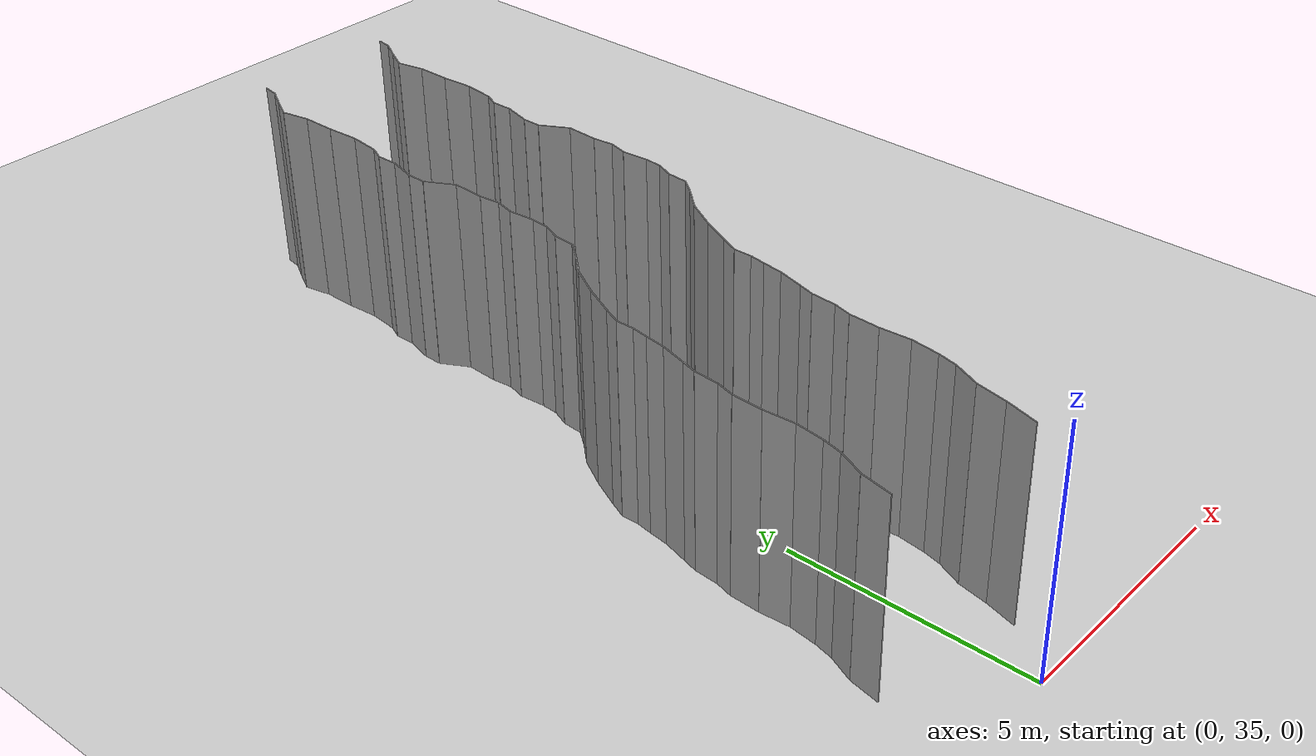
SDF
<sdf version="1.6">
 <world name="default">
  <model name="ground_plane">
   <static>1</static>
   <link name="link">
    <collision name="collision">
     <geometry><plane><normal>0 0 1</normal><size>200 200</size></plane></geometry>
     <surface><friction><ode><mu>100</mu><mu2>50</mu2></ode></friction></surface>
    </collision>
    <visual name="visual">
     <cast_shadows>0</cast_shadows>
     <geometry><plane><normal>0 0 1</normal><size>200 200</size></plane></geometry>
     <material>
      <script><uri>file://media/materials/scripts/gazebo.material</uri><name>Gazebo/Grey</name></script>
     </material>
    </visual>
   </link>
   <pose>0 100 0 0 -0 0</pose>
  </model>
  <model name="wall_149">
   <static>1</static>
   <pose>0.953952443075921 36.362715006935 2 0 0 -0.2597787357633668</pose>
   <link name="link">
    <collision name="collision"><geometry><box><size>0.02 0.666760400928 4</size></box></geometry></collision>
    <visual name="visual">
     <material>
      <script><name>Gazebo/Grey</name><uri>file://media/materials/scripts/gazebo.material</uri></script>
     </material>
     <geometry><box><size>0.02 0.666760400928 4</size></box></geometry>
    </visual>
   </link>
  </model>
  <model name="wall_150">
   <static>1</static>
   <pose>-1.9035389073578008 36.99533701564608 2 0 0 -0.1812032546005489</pose>
   <link name="link">
    <collision name="collision"><geometry><box><size>0.02 0.631189649883 4</size></box></geometry></collision>
    <visual name="visual">
     <material>
      <script><name>Gazebo/Grey</name><uri>file://media/materials/scripts/gazebo.material</uri></script>
     </material>
     <geometry><box><size>0.02 0.631189649883 4</size></box></geometry>
    </visual>
   </link>
  </model>
  <model name="wall_151">
   <static>1</static>
   <pose>1.0964610926421992 36.99533701564608 2 0 0 -0.1812032546005489</pose>
   <link name="link">
    <collision name="collision"><geometry><box><size>0.02 0.631189649883 4</size></box></geometry></collision>
    <visual name="visual">
     <material>
      <script><name>Gazebo/Grey</name><uri>file://media/materials/scripts/gazebo.material</uri></script>
     </material>
     <geometry><box><size>0.02 0.631189649883 4</size></box></geometry>
    </visual>
   </link>
  </model>
  <model name="wall_152">
   <static>1</static>
   <pose>-1.7366129652420343 37.56650441227208 2 0 0 -0.3993901879581281</pose>
   <link name="link">
    <collision name="collision"><geometry><box><size>0.02 0.566026507885 4</size></box></geometry></collision>
    <visual name="visual">
     <material>
      <script><name>Gazebo/Grey</name><uri>file://media/materials/scripts/gazebo.material</uri></script>
     </material>
     <geometry><box><size>0.02 0.566026507885 4</size></box></geometry>
    </visual>
   </link>
  </model>
  <model name="wall_153">
   <static>1</static>
   <pose>1.2633870347579657 37.56650441227208 2 0 0 -0.3993901879581281</pose>
   <link name="link">
    <collision name="collision"><geometry><box><size>0.02 0.566026507885 4</size></box></geometry></collision>
    <visual name="visual">
     <material>
      <script><name>Gazebo/Grey</name><uri>file://media/materials/scripts/gazebo.material</uri></script>
     </material>
     <geometry><box><size>0.02 0.566026507885 4</size></box></geometry>
    </visual>
   </link>
  </model>
  <model name="wall_154">
   <static>1</static>
   <pose>-1.5833919216370573 38.02011456175424 2 0 0 -0.22019690850077497</pose>
   <link name="link">
    <collision name="collision"><geometry><box><size>0.02 0.395285422808 4</size></box></geometry></collision>
    <visual name="visual">
     <material>
      <script><name>Gazebo/Grey</name><uri>file://media/materials/scripts/gazebo.material</uri></script>
     </material>
     <geometry><box><size>0.02 0.395285422808 4</size></box></geometry>
    </visual>
   </link>
  </model>
  <model name="wall_155">
   <static>1</static>
   <pose>1.4166080783629427 38.02011456175424 2 0 0 -0.22019690850077497</pose>
   <link name="link">
    <collision name="collision"><geometry><box><size>0.02 0.395285422808 4</size></box></geometry></collision>
    <visual name="visual">
     <material>
      <script><name>Gazebo/Grey</name><uri>file://media/materials/scripts/gazebo.material</uri></script>
     </material>
     <geometry><box><size>0.02 0.395285422808 4</size></box></geometry>
    </visual>
   </link>
  </model>
  <model name="wall_156">
   <static>1</static>
   <pose>-1.5086262407785367 38.494411604739255 2 0 0 -0.11180341787619473</pose>
   <link name="link">
    <collision name="collision"><geometry><box><size>0.02 0.566389291869 4</size></box></geometry></collision>
    <visual name="visual">
     <material>
      <script><name>Gazebo/Grey</name><uri>file://media/materials/scripts/gazebo.material</uri></script>
     </material>
     <geometry><box><size>0.02 0.566389291869 4</size></box></geometry>
    </visual>
   </link>
  </model>
  <model name="wall_157">
   <static>1</static>
   <pose>1.4913737592214633 38.494411604739255 2 0 0 -0.11180341787619473</pose>
   <link name="link">
    <collision name="collision"><geometry><box><size>0.02 0.566389291869 4</size></box></geometry></collision>
    <visual name="visual">
     <material>
      <script><name>Gazebo/Grey</name><uri>file://media/materials/scripts/gazebo.material</uri></script>
     </material>
     <geometry><box><size>0.02 0.566389291869 4</size></box></geometry>
    </visual>
   </link>
  </model>
  <model name="wall_158">
   <static>1</static>
   <pose>-1.4994235830581988 39.08021783349541 2 0 0 0.0734387904184547</pose>
   <link name="link">
    <collision name="collision"><geometry><box><size>0.02 0.610404708776 4</size></box></geometry></collision>
    <visual name="visual">
     <material>
      <script><name>Gazebo/Grey</name><uri>file://media/materials/scripts/gazebo.material</uri></script>
     </material>
     <geometry><box><size>0.02 0.610404708776 4</size></box></geometry>
    </visual>
   </link>
  </model>
  <model name="wall_159">
   <static>1</static>
   <pose>1.5005764169418012 39.08021783349541 2 0 0 0.0734387904184547</pose>
   <link name="link">
    <collision name="collision"><geometry><box><size>0.02 0.610404708776 4</size></box></geometry></collision>
    <visual name="visual">
     <material>
      <script><name>Gazebo/Grey</name><uri>file://media/materials/scripts/gazebo.material</uri></script>
     </material>
     <geometry><box><size>0.02 0.610404708776 4</size></box></geometry>
    </visual>
   </link>
  </model>
  <model name="wall_160">
   <static>1</static>
   <pose>-1.5132501568828698 39.689447100309806 2 0 0 -0.028094913647897617</pose>
   <link name="link">
    <collision name="collision"><geometry><box><size>0.02 0.609939823895 4</size></box></geometry></collision>
    <visual name="visual">
     <material>
      <script><name>Gazebo/Grey</name><uri>file://media/materials/scripts/gazebo.material</uri></script>
     </material>
     <geometry><box><size>0.02 0.609939823895 4</size></box></geometry>
    </visual>
   </link>
  </model>
  <model name="wall_161">
   <static>1</static>
   <pose>1.4867498431171302 39.689447100309806 2 0 0 -0.028094913647897617</pose>
   <link name="link">
    <collision name="collision"><geometry><box><size>0.02 0.609939823895 4</size></box></geometry></collision>
    <visual name="visual">
     <material>
      <script><name>Gazebo/Grey</name><uri>file://media/materials/scripts/gazebo.material</uri></script>
     </material>
     <geometry><box><size>0.02 0.609939823895 4</size></box></geometry>
    </visual>
   </link>
  </model>
  <model name="wall_162">
   <static>1</static>
   <pose>-1.461634593825266 40.17146752674185 2 0 0 -0.2383586892294332</pose>
   <link name="link">
    <collision name="collision"><geometry><box><size>0.02 0.364651597069 4</size></box></geometry></collision>
    <visual name="visual">
     <material>
      <script><name>Gazebo/Grey</name><uri>file://media/materials/scripts/gazebo.material</uri></script>
     </material>
     <geometry><box><size>0.02 0.364651597069 4</size></box></geometry>
    </visual>
   </link>
  </model>
  <model name="wall_163">
   <static>1</static>
   <pose>1.538365406174734 40.17146752674185 2 0 0 -0.2383586892294332</pose>
   <link name="link">
    <collision name="collision"><geometry><box><size>0.02 0.364651597069 4</size></box></geometry></collision>
    <visual name="visual">
     <material>
      <script><name>Gazebo/Grey</name><uri>file://media/materials/scripts/gazebo.material</uri></script>
     </material>
     <geometry><box><size>0.02 0.364651597069 4</size></box></geometry>
    </visual>
   </link>
  </model>
  <model name="wall_164">
   <static>1</static>
   <pose>-1.4059059711384316 40.59697665930927 2 0 0 -0.05101523009998536</pose>
   <link name="link">
    <collision name="collision"><geometry><box><size>0.02 0.497323547153 4</size></box></geometry></collision>
    <visual name="visual">
     <material>
      <script><name>Gazebo/Grey</name><uri>file://media/materials/scripts/gazebo.material</uri></script>
     </material>
     <geometry><box><size>0.02 0.497323547153 4</size></box></geometry>
    </visual>
   </link>
  </model>
  <model name="wall_165">
   <static>1</static>
   <pose>1.5940940288615684 40.59697665930927 2 0 0 -0.05101523009998536</pose>
   <link name="link">
    <collision name="collision"><geometry><box><size>0.02 0.497323547153 4</size></box></geometry></collision>
    <visual name="visual">
     <material>
      <script><name>Gazebo/Grey</name><uri>file://media/materials/scripts/gazebo.material</uri></script>
     </material>
     <geometry><box><size>0.02 0.497323547153 4</size></box></geometry>
    </visual>
   </link>
  </model>
  <model name="wall_166">
   <static>1</static>
   <pose>-1.353817860589439 40.99644152057332 2 0 0 -0.2550816854668799</pose>
   <link name="link">
    <collision name="collision"><geometry><box><size>0.02 0.312360331455 4</size></box></geometry></collision>
    <visual name="visual">
     <material>
      <script><name>Gazebo/Grey</name><uri>file://media/materials/scripts/gazebo.material</uri></script>
     </material>
     <geometry><box><size>0.02 0.312360331455 4</size></box></geometry>
    </visual>
   </link>
  </model>
  <model name="wall_167">
   <static>1</static>
   <pose>1.646182139410561 40.99644152057332 2 0 0 -0.2550816854668799</pose>
   <link name="link">
    <collision name="collision"><geometry><box><size>0.02 0.312360331455 4</size></box></geometry></collision>
    <visual name="visual">
     <material>
      <script><name>Gazebo/Grey</name><uri>file://media/materials/scripts/gazebo.material</uri></script>
     </material>
     <geometry><box><size>0.02 0.312360331455 4</size></box></geometry>
    </visual>
   </link>
  </model>
  <model name="wall_168">
   <static>1</static>
   <pose>-1.248561377916815 41.408144441778674 2 0 0 -0.24752099990059293</pose>
   <link name="link">
    <collision name="collision"><geometry><box><size>0.02 0.537535243276 4</size></box></geometry></collision>
    <visual name="visual">
     <material>
      <script><name>Gazebo/Grey</name><uri>file://media/materials/scripts/gazebo.material</uri></script>
     </material>
     <geometry><box><size>0.02 0.537535243276 4</size></box></geometry>
    </visual>
   </link>
  </model>
  <model name="wall_169">
   <static>1</static>
   <pose>1.751438622083185 41.408144441778674 2 0 0 -0.24752099990059293</pose>
   <link name="link">
    <collision name="collision"><geometry><box><size>0.02 0.537535243276 4</size></box></geometry></collision>
    <visual name="visual">
     <material>
      <script><name>Gazebo/Grey</name><uri>file://media/materials/scripts/gazebo.material</uri></script>
     </material>
     <geometry><box><size>0.02 0.537535243276 4</size></box></geometry>
    </visual>
   </link>
  </model>
  <model name="wall_170">
   <static>1</static>
   <pose>-1.1589398444164498 41.871208563569006 2 0 0 -0.11687020695933784</pose>
   <link name="link">
    <collision name="collision"><geometry><box><size>0.02 0.407757128646 4</size></box></geometry></collision>
    <visual name="visual">
     <material>
      <script><name>Gazebo/Grey</name><uri>file://media/materials/scripts/gazebo.material</uri></script>
     </material>
     <geometry><box><size>0.02 0.407757128646 4</size></box></geometry>
    </visual>
   </link>
  </model>
  <model name="wall_171">
   <static>1</static>
   <pose>1.8410601555835502 41.871208563569006 2 0 0 -0.11687020695933784</pose>
   <link name="link">
    <collision name="collision"><geometry><box><size>0.02 0.407757128646 4</size></box></geometry></collision>
    <visual name="visual">
     <material>
      <script><name>Gazebo/Grey</name><uri>file://media/materials/scripts/gazebo.material</uri></script>
     </material>
     <geometry><box><size>0.02 0.407757128646 4</size></box></geometry>
    </visual>
   </link>
  </model>
  <model name="wall_172">
   <static>1</static>
   <pose>-1.1125136997612342 42.235458995203956 2 0 0 -0.13913383616414896</pose>
   <link name="link">
    <collision name="collision"><geometry><box><size>0.02 0.326682167201 4</size></box></geometry></collision>
    <visual name="visual">
     <material>
      <script><name>Gazebo/Grey</name><uri>file://media/materials/scripts/gazebo.material</uri></script>
     </material>
     <geometry><box><size>0.02 0.326682167201 4</size></box></geometry>
    </visual>
   </link>
  </model>
  <model name="wall_173">
   <static>1</static>
   <pose>1.8874863002387658 42.235458995203956 2 0 0 -0.13913383616414896</pose>
   <link name="link">
    <collision name="collision"><geometry><box><size>0.02 0.326682167201 4</size></box></geometry></collision>
    <visual name="visual">
     <material>
      <script><name>Gazebo/Grey</name><uri>file://media/materials/scripts/gazebo.material</uri></script>
     </material>
     <geometry><box><size>0.02 0.326682167201 4</size></box></geometry>
    </visual>
   </link>
  </model>
  <model name="wall_174">
   <static>1</static>
   <pose>-1.094319239344467 42.57827748512492 2 0 0 0.0246203461515171</pose>
   <link name="link">
    <collision name="collision"><geometry><box><size>0.02 0.362221485198 4</size></box></geometry></collision>
    <visual name="visual">
     <material>
      <script><name>Gazebo/Grey</name><uri>file://media/materials/scripts/gazebo.material</uri></script>
     </material>
     <geometry><box><size>0.02 0.362221485198 4</size></box></geometry>
    </visual>
   </link>
  </model>
  <model name="wall_175">
   <static>1</static>
   <pose>1.905680760655533 42.57827748512492 2 0 0 0.0246203461515171</pose>
   <link name="link">
    <collision name="collision"><geometry><box><size>0.02 0.362221485198 4</size></box></geometry></collision>
    <visual name="visual">
     <material>
      <script><name>Gazebo/Grey</name><uri>file://media/materials/scripts/gazebo.material</uri></script>
     </material>
     <geometry><box><size>0.02 0.362221485198 4</size></box></geometry>
    </visual>
   </link>
  </model>
  <model name="wall_176">
   <static>1</static>
   <pose>-1.0290549616210347 42.93020750800942 2 0 0 -0.38741483097946844</pose>
   <link name="link">
    <collision name="collision"><geometry><box><size>0.02 0.369102996166 4</size></box></geometry></collision>
    <visual name="visual">
     <material>
      <script><name>Gazebo/Grey</name><uri>file://media/materials/scripts/gazebo.material</uri></script>
     </material>
     <geometry><box><size>0.02 0.369102996166 4</size></box></geometry>
    </visual>
   </link>
  </model>
  <model name="wall_177">
   <static>1</static>
   <pose>1.9709450383789653 42.93020750800942 2 0 0 -0.38741483097946844</pose>
   <link name="link">
    <collision name="collision"><geometry><box><size>0.02 0.369102996166 4</size></box></geometry></collision>
    <visual name="visual">
     <material>
      <script><name>Gazebo/Grey</name><uri>file://media/materials/scripts/gazebo.material</uri></script>
     </material>
     <geometry><box><size>0.02 0.369102996166 4</size></box></geometry>
    </visual>
   </link>
  </model>
  <model name="wall_178">
   <static>1</static>
   <pose>-0.8257526102507109 43.401699759171 2 0 0 -0.41814509967411434</pose>
   <link name="link">
    <collision name="collision"><geometry><box><size>0.02 0.65792011163 4</size></box></geometry></collision>
    <visual name="visual">
     <material>
      <script><name>Gazebo/Grey</name><uri>file://media/materials/scripts/gazebo.material</uri></script>
     </material>
     <geometry><box><size>0.02 0.65792011163 4</size></box></geometry>
    </visual>
   </link>
  </model>
  <model name="wall_179">
   <static>1</static>
   <pose>2.174247389749289 43.401699759171 2 0 0 -0.41814509967411434</pose>
   <link name="link">
    <collision name="collision"><geometry><box><size>0.02 0.65792011163 4</size></box></geometry></collision>
    <visual name="visual">
     <material>
      <script><name>Gazebo/Grey</name><uri>file://media/materials/scripts/gazebo.material</uri></script>
     </material>
     <geometry><box><size>0.02 0.65792011163 4</size></box></geometry>
    </visual>
   </link>
  </model>
  <model name="wall_180">
   <static>1</static>
   <pose>-0.5340589634218502 43.99341517085302 2 0 0 -0.49758113539258214</pose>
   <link name="link">
    <collision name="collision"><geometry><box><size>0.02 0.662533723747 4</size></box></geometry></collision>
    <visual name="visual">
     <material>
      <script><name>Gazebo/Grey</name><uri>file://media/materials/scripts/gazebo.material</uri></script>
     </material>
     <geometry><box><size>0.02 0.662533723747 4</size></box></geometry>
    </visual>
   </link>
  </model>
  <model name="wall_181">
   <static>1</static>
   <pose>2.46594103657815 43.99341517085302 2 0 0 -0.49758113539258214</pose>
   <link name="link">
    <collision name="collision"><geometry><box><size>0.02 0.662533723747 4</size></box></geometry></collision>
    <visual name="visual">
     <material>
      <script><name>Gazebo/Grey</name><uri>file://media/materials/scripts/gazebo.material</uri></script>
     </material>
     <geometry><box><size>0.02 0.662533723747 4</size></box></geometry>
    </visual>
   </link>
  </model>
  <model name="wall_182">
   <static>1</static>
   <pose>-0.1981083959927554 44.48720207509857 2 0 0 -0.7201782046623049</pose>
   <link name="link">
    <collision name="collision"><geometry><box><size>0.02 0.539291615489 4</size></box></geometry></collision>
    <visual name="visual">
     <material>
      <script><name>Gazebo/Grey</name><uri>file://media/materials/scripts/gazebo.material</uri></script>
     </material>
     <geometry><box><size>0.02 0.539291615489 4</size></box></geometry>
    </visual>
   </link>
  </model>
  <model name="wall_183">
   <static>1</static>
   <pose>2.8018916040072446 44.48720207509857 2 0 0 -0.7201782046623049</pose>
   <link name="link">
    <collision name="collision"><geometry><box><size>0.02 0.539291615489 4</size></box></geometry></collision>
    <visual name="visual">
     <material>
      <script><name>Gazebo/Grey</name><uri>file://media/materials/scripts/gazebo.material</uri></script>
     </material>
     <geometry><box><size>0.02 0.539291615489 4</size></box></geometry>
    </visual>
   </link>
  </model>
  <model name="wall_184">
   <static>1</static>
   <pose>0.10004104919824205 44.848594451918174 2 0 0 -0.6486666486319423</pose>
   <link name="link">
    <collision name="collision"><geometry><box><size>0.02 0.398305408374 4</size></box></geometry></collision>
    <visual name="visual">
     <material>
      <script><name>Gazebo/Grey</name><uri>file://media/materials/scripts/gazebo.material</uri></script>
     </material>
     <geometry><box><size>0.02 0.398305408374 4</size></box></geometry>
    </visual>
   </link>
  </model>
  <model name="wall_185">
   <static>1</static>
   <pose>3.100041049198242 44.848594451918174 2 0 0 -0.6486666486319423</pose>
   <link name="link">
    <collision name="collision"><geometry><box><size>0.02 0.398305408374 4</size></box></geometry></collision>
    <visual name="visual">
     <material>
      <script><name>Gazebo/Grey</name><uri>file://media/materials/scripts/gazebo.material</uri></script>
     </material>
     <geometry><box><size>0.02 0.398305408374 4</size></box></geometry>
    </visual>
   </link>
  </model>
  <model name="wall_186">
   <static>1</static>
   <pose>0.23278929678846594 45.22057199758341 2 0 0 -0.05824025257293342</pose>
   <link name="link">
    <collision name="collision"><geometry><box><size>0.02 0.427273923946 4</size></box></geometry></collision>
    <visual name="visual">
     <material>
      <script><name>Gazebo/Grey</name><uri>file://media/materials/scripts/gazebo.material</uri></script>
     </material>
     <geometry><box><size>0.02 0.427273923946 4</size></box></geometry>
    </visual>
   </link>
  </model>
  <model name="wall_187">
   <static>1</static>
   <pose>3.232789296788466 45.22057199758341 2 0 0 -0.05824025257293342</pose>
   <link name="link">
    <collision name="collision"><geometry><box><size>0.02 0.427273923946 4</size></box></geometry></collision>
    <visual name="visual">
     <material>
      <script><name>Gazebo/Grey</name><uri>file://media/materials/scripts/gazebo.material</uri></script>
     </material>
     <geometry><box><size>0.02 0.427273923946 4</size></box></geometry>
    </visual>
   </link>
  </model>
  <model name="wall_188">
   <static>1</static>
   <pose>0.31382050513622883 45.609206447766766 2 0 0 -0.372873750901529</pose>
   <link name="link">
    <collision name="collision"><geometry><box><size>0.02 0.376597576998 4</size></box></geometry></collision>
    <visual name="visual">
     <material>
      <script><name>Gazebo/Grey</name><uri>file://media/materials/scripts/gazebo.material</uri></script>
     </material>
     <geometry><box><size>0.02 0.376597576998 4</size></box></geometry>
    </visual>
   </link>
  </model>
  <model name="wall_189">
   <static>1</static>
   <pose>3.3138205051362286 45.609206447766766 2 0 0 -0.372873750901529</pose>
   <link name="link">
    <collision name="collision"><geometry><box><size>0.02 0.376597576998 4</size></box></geometry></collision>
    <visual name="visual">
     <material>
      <script><name>Gazebo/Grey</name><uri>file://media/materials/scripts/gazebo.material</uri></script>
     </material>
     <geometry><box><size>0.02 0.376597576998 4</size></box></geometry>
    </visual>
   </link>
  </model>
  <model name="wall_190">
   <static>1</static>
   <pose>0.3930780464380687 45.95806623233446 2 0 0 -0.0613727764012127</pose>
   <link name="link">
    <collision name="collision"><geometry><box><size>0.02 0.347654692203 4</size></box></geometry></collision>
    <visual name="visual">
     <material>
      <script><name>Gazebo/Grey</name><uri>file://media/materials/scripts/gazebo.material</uri></script>
     </material>
     <geometry><box><size>0.02 0.347654692203 4</size></box></geometry>
    </visual>
   </link>
  </model>
  <model name="wall_191">
   <static>1</static>
   <pose>3.3930780464380685 45.95806623233446 2 0 0 -0.0613727764012127</pose>
   <link name="link">
    <collision name="collision"><geometry><box><size>0.02 0.347654692203 4</size></box></geometry></collision>
    <visual name="visual">
     <material>
      <script><name>Gazebo/Grey</name><uri>file://media/materials/scripts/gazebo.material</uri></script>
     </material>
     <geometry><box><size>0.02 0.347654692203 4</size></box></geometry>
    </visual>
   </link>
  </model>
  <model name="wall_192">
   <static>1</static>
   <pose>0.38108930830555776 46.4012447910675 2 0 0 0.08379338381479963</pose>
   <link name="link">
    <collision name="collision"><geometry><box><size>0.02 0.541256018258 4</size></box></geometry></collision>
    <visual name="visual">
     <material>
      <script><name>Gazebo/Grey</name><uri>file://media/materials/scripts/gazebo.material</uri></script>
     </material>
     <geometry><box><size>0.02 0.541256018258 4</size></box></geometry>
    </visual>
   </link>
  </model>
  <model name="wall_193">
   <static>1</static>
   <pose>3.3810893083055578 46.4012447910675 2 0 0 0.08379338381479963</pose>
   <link name="link">
    <collision name="collision"><geometry><box><size>0.02 0.541256018258 4</size></box></geometry></collision>
    <visual name="visual">
     <material>
      <script><name>Gazebo/Grey</name><uri>file://media/materials/scripts/gazebo.material</uri></script>
     </material>
     <geometry><box><size>0.02 0.541256018258 4</size></box></geometry>
    </visual>
   </link>
  </model>
  <model name="wall_194">
   <static>1</static>
   <pose>0.4034812535725153 46.857998448548 2 0 0 -0.23627374515816582</pose>
   <link name="link">
    <collision name="collision"><geometry><box><size>0.02 0.384842443225 4</size></box></geometry></collision>
    <visual name="visual">
     <material>
      <script><name>Gazebo/Grey</name><uri>file://media/materials/scripts/gazebo.material</uri></script>
     </material>
     <geometry><box><size>0.02 0.384842443225 4</size></box></geometry>
    </visual>
   </link>
  </model>
  <model name="wall_195">
   <static>1</static>
   <pose>3.403481253572515 46.857998448548 2 0 0 -0.23627374515816582</pose>
   <link name="link">
    <collision name="collision"><geometry><box><size>0.02 0.384842443225 4</size></box></geometry></collision>
    <visual name="visual">
     <material>
      <script><name>Gazebo/Grey</name><uri>file://media/materials/scripts/gazebo.material</uri></script>
     </material>
     <geometry><box><size>0.02 0.384842443225 4</size></box></geometry>
    </visual>
   </link>
  </model>
  <model name="wall_196">
   <static>1</static>
   <pose>0.4250167148562159 47.25584232055552 2 0 0 0.11106986005015725</pose>
   <link name="link">
    <collision name="collision"><geometry><box><size>0.02 0.424150973623 4</size></box></geometry></collision>
    <visual name="visual">
     <material>
      <script><name>Gazebo/Grey</name><uri>file://media/materials/scripts/gazebo.material</uri></script>
     </material>
     <geometry><box><size>0.02 0.424150973623 4</size></box></geometry>
    </visual>
   </link>
  </model>
  <model name="wall_197">
   <static>1</static>
   <pose>3.425016714856216 47.25584232055552 2 0 0 0.11106986005015725</pose>
   <link name="link">
    <collision name="collision"><geometry><box><size>0.02 0.424150973623 4</size></box></geometry></collision>
    <visual name="visual">
     <material>
      <script><name>Gazebo/Grey</name><uri>file://media/materials/scripts/gazebo.material</uri></script>
     </material>
     <geometry><box><size>0.02 0.424150973623 4</size></box></geometry>
    </visual>
   </link>
  </model>
  <model name="wall_198">
   <static>1</static>
   <pose>0.4145255717596562 47.79638959512828 2 0 0 -0.039447371115283604</pose>
   <link name="link">
    <collision name="collision"><geometry><box><size>0.02 0.660070658923 4</size></box></geometry></collision>
    <visual name="visual">
     <material>
      <script><name>Gazebo/Grey</name><uri>file://media/materials/scripts/gazebo.material</uri></script>
     </material>
     <geometry><box><size>0.02 0.660070658923 4</size></box></geometry>
    </visual>
   </link>
  </model>
  <model name="wall_199">
   <static>1</static>
   <pose>3.4145255717596563 47.79638959512828 2 0 0 -0.039447371115283604</pose>
   <link name="link">
    <collision name="collision"><geometry><box><size>0.02 0.660070658923 4</size></box></geometry></collision>
    <visual name="visual">
     <material>
      <script><name>Gazebo/Grey</name><uri>file://media/materials/scripts/gazebo.material</uri></script>
     </material>
     <geometry><box><size>0.02 0.660070658923 4</size></box></geometry>
    </visual>
   </link>
  </model>
  <model name="wall_200">
   <static>1</static>
   <pose>0.27613299351292164 48.405556663525985 2 0 0 0.49662418244946027</pose>
   <link name="link">
    <collision name="collision"><geometry><box><size>0.02 0.635554495658 4</size></box></geometry></collision>
    <visual name="visual">
     <material>
      <script><name>Gazebo/Grey</name><uri>file://media/materials/scripts/gazebo.material</uri></script>
     </material>
     <geometry><box><size>0.02 0.635554495658 4</size></box></geometry>
    </visual>
   </link>
  </model>
  <model name="wall_201">
   <static>1</static>
   <pose>3.2761329935129218 48.405556663525985 2 0 0 0.49662418244946027</pose>
   <link name="link">
    <collision name="collision"><geometry><box><size>0.02 0.635554495658 4</size></box></geometry></collision>
    <visual name="visual">
     <material>
      <script><name>Gazebo/Grey</name><uri>file://media/materials/scripts/gazebo.material</uri></script>
     </material>
     <geometry><box><size>0.02 0.635554495658 4</size></box></geometry>
    </visual>
   </link>
  </model>
  <model name="wall_202">
   <static>1</static>
   <pose>0.12317535109028192 48.87107018619767 2 0 0 0.008324395934979467</pose>
   <link name="link">
    <collision name="collision"><geometry><box><size>0.02 0.372262965721 4</size></box></geometry></collision>
    <visual name="visual">
     <material>
      <script><name>Gazebo/Grey</name><uri>file://media/materials/scripts/gazebo.material</uri></script>
     </material>
     <geometry><box><size>0.02 0.372262965721 4</size></box></geometry>
    </visual>
   </link>
  </model>
  <model name="wall_203">
   <static>1</static>
   <pose>3.123175351090282 48.87107018619767 2 0 0 0.008324395934979467</pose>
   <link name="link">
    <collision name="collision"><geometry><box><size>0.02 0.372262965721 4</size></box></geometry></collision>
    <visual name="visual">
     <material>
      <script><name>Gazebo/Grey</name><uri>file://media/materials/scripts/gazebo.material</uri></script>
     </material>
     <geometry><box><size>0.02 0.372262965721 4</size></box></geometry>
    </visual>
   </link>
  </model>
  <model name="wall_204">
   <static>1</static>
   <pose>0.19483115608762858 49.33687050447285 2 0 0 -0.25600726414028846</pose>
   <link name="link">
    <collision name="collision"><geometry><box><size>0.02 0.578194669097 4</size></box></geometry></collision>
    <visual name="visual">
     <material>
      <script><name>Gazebo/Grey</name><uri>file://media/materials/scripts/gazebo.material</uri></script>
     </material>
     <geometry><box><size>0.02 0.578194669097 4</size></box></geometry>
    </visual>
   </link>
  </model>
  <model name="wall_205">
   <static>1</static>
   <pose>3.194831156087629 49.33687050447285 2 0 0 -0.25600726414028846</pose>
   <link name="link">
    <collision name="collision"><geometry><box><size>0.02 0.578194669097 4</size></box></geometry></collision>
    <visual name="visual">
     <material>
      <script><name>Gazebo/Grey</name><uri>file://media/materials/scripts/gazebo.material</uri></script>
     </material>
     <geometry><box><size>0.02 0.578194669097 4</size></box></geometry>
    </visual>
   </link>
  </model>
  <model name="wall_206">
   <static>1</static>
   <pose>0.264303244484377 49.82943874212194 2 0 0 0.017533451680546156</pose>
   <link name="link">
    <collision name="collision"><geometry><box><size>0.02 0.425851362803 4</size></box></geometry></collision>
    <visual name="visual">
     <material>
      <script><name>Gazebo/Grey</name><uri>file://media/materials/scripts/gazebo.material</uri></script>
     </material>
     <geometry><box><size>0.02 0.425851362803 4</size></box></geometry>
    </visual>
   </link>
  </model>
  <model name="wall_207">
   <static>1</static>
   <pose>3.264303244484377 49.82943874212194 2 0 0 0.017533451680546156</pose>
   <link name="link">
    <collision name="collision"><geometry><box><size>0.02 0.425851362803 4</size></box></geometry></collision>
    <visual name="visual">
     <material>
      <script><name>Gazebo/Grey</name><uri>file://media/materials/scripts/gazebo.material</uri></script>
     </material>
     <geometry><box><size>0.02 0.425851362803 4</size></box></geometry>
    </visual>
   </link>
  </model>
  <model name="wall_208">
   <static>1</static>
   <pose>0.325033433855689 50.186085382223 2 0 0 -0.4215467029525479</pose>
   <link name="link">
    <collision name="collision"><geometry><box><size>0.02 0.315091365451 4</size></box></geometry></collision>
    <visual name="visual">
     <material>
      <script><name>Gazebo/Grey</name><uri>file://media/materials/scripts/gazebo.material</uri></script>
     </material>
     <geometry><box><size>0.02 0.315091365451 4</size></box></geometry>
    </visual>
   </link>
  </model>
  <model name="wall_209">
   <static>1</static>
   <pose>3.325033433855689 50.186085382223 2 0 0 -0.4215467029525479</pose>
   <link name="link">
    <collision name="collision"><geometry><box><size>0.02 0.315091365451 4</size></box></geometry></collision>
    <visual name="visual">
     <material>
      <script><name>Gazebo/Grey</name><uri>file://media/materials/scripts/gazebo.material</uri></script>
     </material>
     <geometry><box><size>0.02 0.315091365451 4</size></box></geometry>
    </visual>
   </link>
  </model>
  <model name="wall_210">
   <static>1</static>
   <pose>0.42583560868841464 50.64525416923067 2 0 0 -0.11470390820343997</pose>
   <link name="link">
    <collision name="collision"><geometry><box><size>0.02 0.635002985021 4</size></box></geometry></collision>
    <visual name="visual">
     <material>
      <script><name>Gazebo/Grey</name><uri>file://media/materials/scripts/gazebo.material</uri></script>
     </material>
     <geometry><box><size>0.02 0.635002985021 4</size></box></geometry>
    </visual>
   </link>
  </model>
  <model name="wall_211">
   <static>1</static>
   <pose>3.4258356086884145 50.64525416923067 2 0 0 -0.11470390820343997</pose>
   <link name="link">
    <collision name="collision"><geometry><box><size>0.02 0.635002985021 4</size></box></geometry></collision>
    <visual name="visual">
     <material>
      <script><name>Gazebo/Grey</name><uri>file://media/materials/scripts/gazebo.material</uri></script>
     </material>
     <geometry><box><size>0.02 0.635002985021 4</size></box></geometry>
    </visual>
   </link>
  </model>
  <model name="wall_212">
   <static>1</static>
   <pose>0.440649338446015 51.29368147186635 2 0 0 0.06454785169001419</pose>
   <link name="link">
    <collision name="collision"><geometry><box><size>0.02 0.667414288171 4</size></box></geometry></collision>
    <visual name="visual">
     <material>
      <script><name>Gazebo/Grey</name><uri>file://media/materials/scripts/gazebo.material</uri></script>
     </material>
     <geometry><box><size>0.02 0.667414288171 4</size></box></geometry>
    </visual>
   </link>
  </model>
  <model name="wall_213">
   <static>1</static>
   <pose>3.440649338446015 51.29368147186635 2 0 0 0.06454785169001419</pose>
   <link name="link">
    <collision name="collision"><geometry><box><size>0.02 0.667414288171 4</size></box></geometry></collision>
    <visual name="visual">
     <material>
      <script><name>Gazebo/Grey</name><uri>file://media/materials/scripts/gazebo.material</uri></script>
     </material>
     <geometry><box><size>0.02 0.667414288171 4</size></box></geometry>
    </visual>
   </link>
  </model>
  <model name="wall_214">
   <static>1</static>
   <pose>0.41697045671613864 51.967219779926836 2 0 0 0.006324707967575611</pose>
   <link name="link">
    <collision name="collision"><geometry><box><size>0.02 0.681065833048 4</size></box></geometry></collision>
    <visual name="visual">
     <material>
      <script><name>Gazebo/Grey</name><uri>file://media/materials/scripts/gazebo.material</uri></script>
     </material>
     <geometry><box><size>0.02 0.681065833048 4</size></box></geometry>
    </visual>
   </link>
  </model>
  <model name="wall_215">
   <static>1</static>
   <pose>3.4169704567161387 51.967219779926836 2 0 0 0.006324707967575611</pose>
   <link name="link">
    <collision name="collision"><geometry><box><size>0.02 0.681065833048 4</size></box></geometry></collision>
    <visual name="visual">
     <material>
      <script><name>Gazebo/Grey</name><uri>file://media/materials/scripts/gazebo.material</uri></script>
     </material>
     <geometry><box><size>0.02 0.681065833048 4</size></box></geometry>
    </visual>
   </link>
  </model>
  <model name="wall_216">
   <static>1</static>
   <pose>0.358684032744959 52.593584755568315 2 0 0 0.1939111327336176</pose>
   <link name="link">
    <collision name="collision"><geometry><box><size>0.02 0.58259672489 4</size></box></geometry></collision>
    <visual name="visual">
     <material>
      <script><name>Gazebo/Grey</name><uri>file://media/materials/scripts/gazebo.material</uri></script>
     </material>
     <geometry><box><size>0.02 0.58259672489 4</size></box></geometry>
    </visual>
   </link>
  </model>
  <model name="wall_217">
   <static>1</static>
   <pose>3.358684032744959 52.593584755568315 2 0 0 0.1939111327336176</pose>
   <link name="link">
    <collision name="collision"><geometry><box><size>0.02 0.58259672489 4</size></box></geometry></collision>
    <visual name="visual">
     <material>
      <script><name>Gazebo/Grey</name><uri>file://media/materials/scripts/gazebo.material</uri></script>
     </material>
     <geometry><box><size>0.02 0.58259672489 4</size></box></geometry>
    </visual>
   </link>
  </model>
  <model name="wall_218">
   <static>1</static>
   <pose>0.4105129605106411 53.08824872914343 2 0 0 -0.47715121513921194</pose>
   <link name="link">
    <collision name="collision"><geometry><box><size>0.02 0.470164353436 4</size></box></geometry></collision>
    <visual name="visual">
     <material>
      <script><name>Gazebo/Grey</name><uri>file://media/materials/scripts/gazebo.material</uri></script>
     </material>
     <geometry><box><size>0.02 0.470164353436 4</size></box></geometry>
    </visual>
   </link>
  </model>
  <model name="wall_219">
   <static>1</static>
   <pose>3.410512960510641 53.08824872914343 2 0 0 -0.47715121513921194</pose>
   <link name="link">
    <collision name="collision"><geometry><box><size>0.02 0.470164353436 4</size></box></geometry></collision>
    <visual name="visual">
     <material>
      <script><name>Gazebo/Grey</name><uri>file://media/materials/scripts/gazebo.material</uri></script>
     </material>
     <geometry><box><size>0.02 0.470164353436 4</size></box></geometry>
    </visual>
   </link>
  </model>
  <model name="wall_220">
   <static>1</static>
   <pose>0.6284289352849184 53.495390945510174 2 0 0 -0.5062434875307313</pose>
   <link name="link">
    <collision name="collision"><geometry><box><size>0.02 0.453517994898 4</size></box></geometry></collision>
    <visual name="visual">
     <material>
      <script><name>Gazebo/Grey</name><uri>file://media/materials/scripts/gazebo.material</uri></script>
     </material>
     <geometry><box><size>0.02 0.453517994898 4</size></box></geometry>
    </visual>
   </link>
  </model>
  <model name="wall_221">
   <static>1</static>
   <pose>3.6284289352849184 53.495390945510174 2 0 0 -0.5062434875307313</pose>
   <link name="link">
    <collision name="collision"><geometry><box><size>0.02 0.453517994898 4</size></box></geometry></collision>
    <visual name="visual">
     <material>
      <script><name>Gazebo/Grey</name><uri>file://media/materials/scripts/gazebo.material</uri></script>
     </material>
     <geometry><box><size>0.02 0.453517994898 4</size></box></geometry>
    </visual>
   </link>
  </model>
  <model name="wall_222">
   <static>1</static>
   <pose>0.7629024520368592 53.85164602176431 2 0 0 -0.15401589993917852</pose>
   <link name="link">
    <collision name="collision"><geometry><box><size>0.02 0.319659746276 4</size></box></geometry></collision>
    <visual name="visual">
     <material>
      <script><name>Gazebo/Grey</name><uri>file://media/materials/scripts/gazebo.material</uri></script>
     </material>
     <geometry><box><size>0.02 0.319659746276 4</size></box></geometry>
    </visual>
   </link>
  </model>
  <model name="wall_223">
   <static>1</static>
   <pose>3.762902452036859 53.85164602176431 2 0 0 -0.15401589993917852</pose>
   <link name="link">
    <collision name="collision"><geometry><box><size>0.02 0.319659746276 4</size></box></geometry></collision>
    <visual name="visual">
     <material>
      <script><name>Gazebo/Grey</name><uri>file://media/materials/scripts/gazebo.material</uri></script>
     </material>
     <geometry><box><size>0.02 0.319659746276 4</size></box></geometry>
    </visual>
   </link>
  </model>
 </world>
</sdf>
